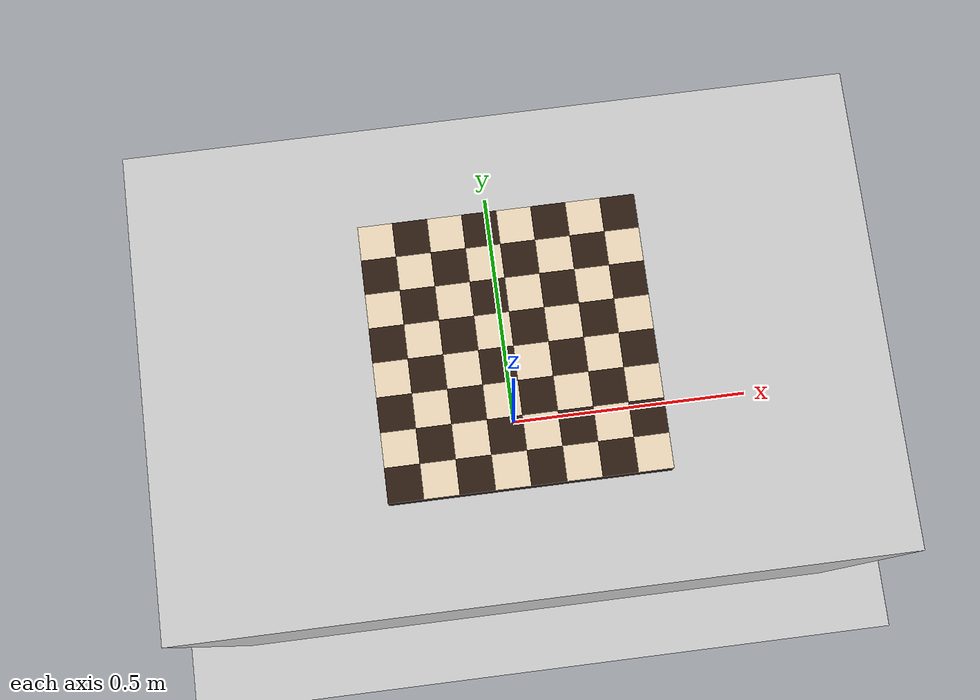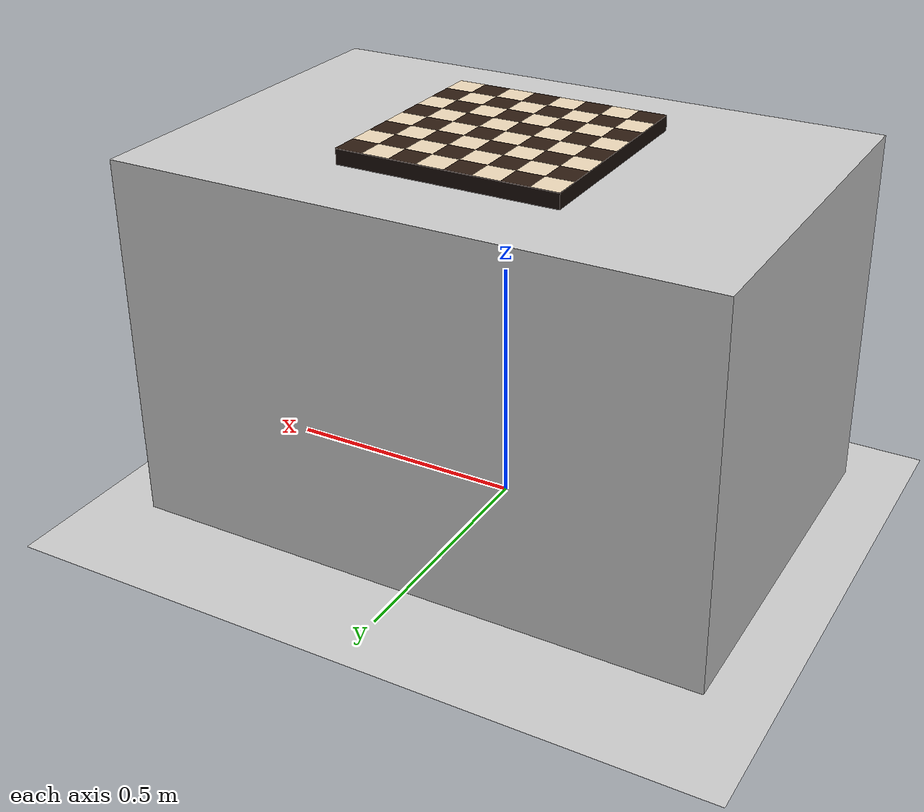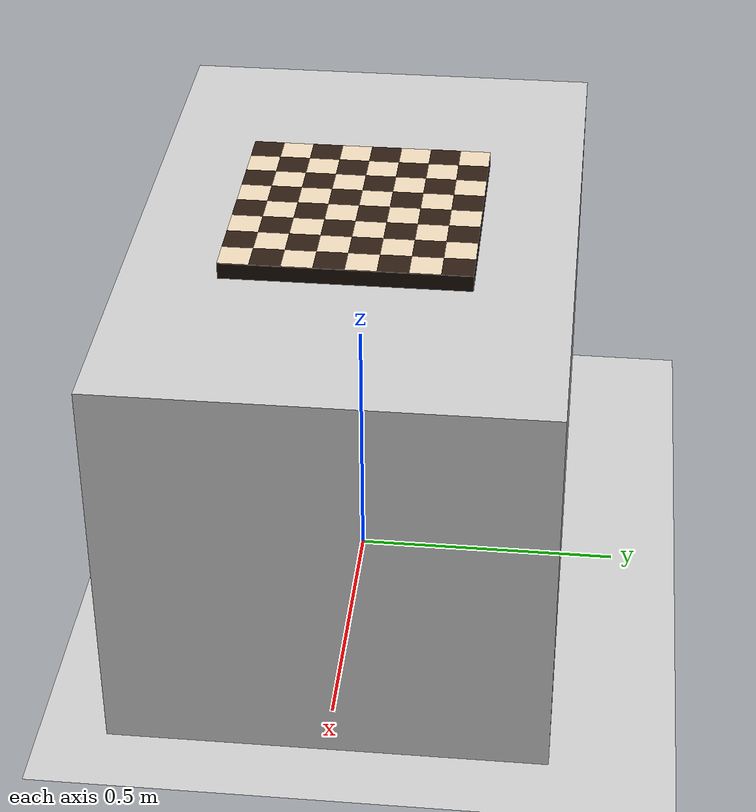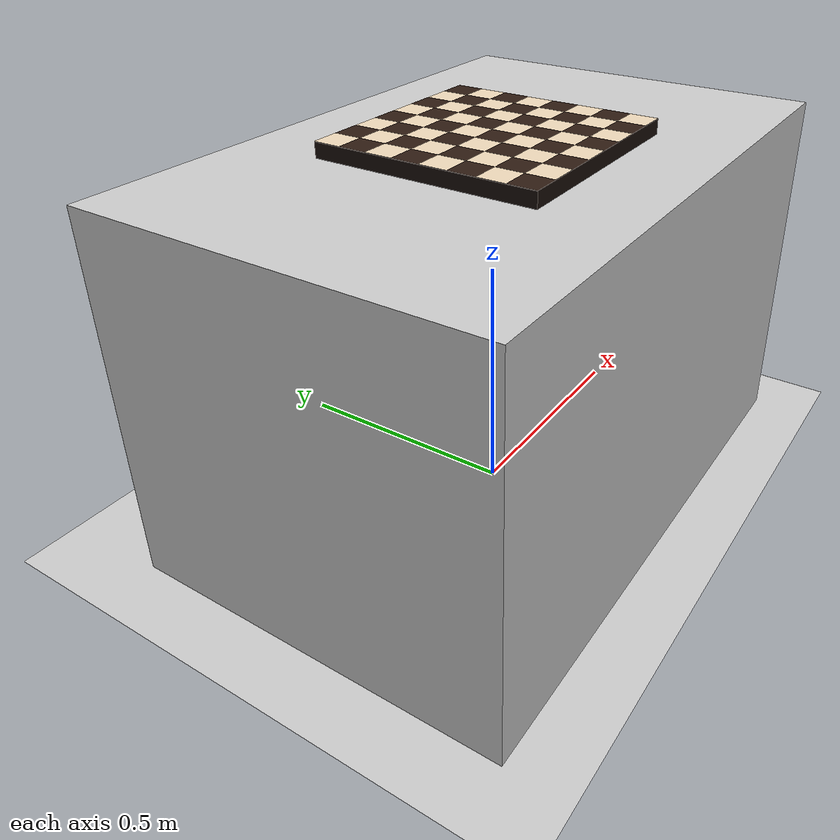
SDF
<?xml version="1.0" ?>
<sdf version="1.9">
  <world name="chess_world">
    <gravity>0 0 -9.81</gravity>

    <plugin filename="ignition-gazebo-physics-system"
            name="ignition::gazebo::systems::Physics"/>
    <plugin filename="ignition-gazebo-scene-broadcaster-system"
            name="ignition::gazebo::systems::SceneBroadcaster"/>
    <plugin filename="ignition-gazebo-user-commands-system"
            name="ignition::gazebo::systems::UserCommands"/>
    <plugin filename="ignition-gazebo-sensors-system"
            name="ignition::gazebo::systems::Sensors">
      <render_engine>ogre2</render_engine>
    </plugin>

    <!-- Conservative physics for stability -->
    <physics name="physics" type="dart">
      <max_step_size>0.001</max_step_size>
      <real_time_factor>1.0</real_time_factor>
      <real_time_update_rate>1000</real_time_update_rate>
    </physics>

    <scene>
      <ambient>0.6 0.6 0.6 1</ambient>
      <background>0.95 0.95 0.95 1</background>
    </scene>

    <light name="sun" type="directional">
      <pose>0 0 10 0 0 0</pose>
      <direction>-0.2 0.1 -1</direction>
      <diffuse>1 1 1 1</diffuse>
      <specular>0.2 0.2 0.2 1</specular>
    </light>

    <!-- Ground -->
    <model name="ground_plane">
      <static>true</static>
      <link name="link">
        <collision name="collision">
          <geometry>
            <plane><normal>0 0 1</normal><size>50 50</size></plane>
          </geometry>
          <surface>
            <friction>
              <ode><mu>1.0</mu><mu2>1.0</mu2></ode>
            </friction>
          </surface>
        </collision>
        <visual name="visual">
          <geometry>
            <plane><normal>0 0 1</normal><size>50 50</size></plane>
          </geometry>
        </visual>
      </link>
    </model>

    <!-- Table: 1.2 x 0.8 x 0.75 -->
    <model name="table">
      <static>true</static>
      <pose>0 0 0.375 0 0 0</pose>
      <link name="link">
        <collision name="collision">
          <geometry><box><size>1.2 0.8 0.75</size></box></geometry>
          <surface>
            <friction>
              <ode><mu>1.2</mu><mu2>1.2</mu2></ode>
            </friction>
          </surface>
        </collision>
        <visual name="visual">
            <material>
                <ambient>0.8 0.8 0.8 1</ambient>
                <diffuse>0.8 0.8 0.8 1</diffuse>
                <specular>0.1 0.1 0.1 1</specular>
            </material>
          <geometry><box><size>1.2 0.8 0.75</size></box></geometry>
        </visual>
      </link>
    </model>

    <!-- Chessboard: 0.45 x 0.45 x 0.03, on top of table -->
    <model name="chessboard">
      <static>true</static>
      <pose>0 0 0.765 0 0 0</pose>
      <link name="link">
        <collision name="collision">
          <geometry><box><size>0.45 0.45 0.03</size></box></geometry>
          <surface>
            <friction>
              <ode><mu>1.5</mu><mu2>1.5</mu2></ode>
            </friction>
          </surface>
        </collision>
        <visual name="frame">
          <geometry><box><size>0.45 0.45 0.03</size></box></geometry>
          <material>
            <ambient>0.10 0.06 0.04 1</ambient>
            <diffuse>0.10 0.06 0.04 1</diffuse>
            <specular>0.05 0.05 0.05 1</specular>
          </material>
        </visual>
        <visual name="sq_a1">
          <pose>-0.196875 -0.196875 0.015500 0 0 0</pose>
          <geometry><box><size>0.05625 0.05625 0.001</size></box></geometry>
          <material>
            <ambient>0.18 0.11 0.07 1</ambient>
            <diffuse>0.18 0.11 0.07 1</diffuse>
            <specular>0.1 0.1 0.1 1</specular>
          </material>
        </visual>
        <visual name="sq_b1">
          <pose>-0.196875 -0.140625 0.015500 0 0 0</pose>
          <geometry><box><size>0.05625 0.05625 0.001</size></box></geometry>
          <material>
            <ambient>0.93 0.85 0.73 1</ambient>
            <diffuse>0.93 0.85 0.73 1</diffuse>
            <specular>0.1 0.1 0.1 1</specular>
          </material>
        </visual>
        <visual name="sq_c1">
          <pose>-0.196875 -0.084375 0.015500 0 0 0</pose>
          <geometry><box><size>0.05625 0.05625 0.001</size></box></geometry>
          <material>
            <ambient>0.18 0.11 0.07 1</ambient>
            <diffuse>0.18 0.11 0.07 1</diffuse>
            <specular>0.1 0.1 0.1 1</specular>
          </material>
        </visual>
        <visual name="sq_d1">
          <pose>-0.196875 -0.028125 0.015500 0 0 0</pose>
          <geometry><box><size>0.05625 0.05625 0.001</size></box></geometry>
          <material>
            <ambient>0.93 0.85 0.73 1</ambient>
            <diffuse>0.93 0.85 0.73 1</diffuse>
            <specular>0.1 0.1 0.1 1</specular>
          </material>
        </visual>
        <visual name="sq_e1">
          <pose>-0.196875 0.028125 0.015500 0 0 0</pose>
          <geometry><box><size>0.05625 0.05625 0.001</size></box></geometry>
          <material>
            <ambient>0.18 0.11 0.07 1</ambient>
            <diffuse>0.18 0.11 0.07 1</diffuse>
            <specular>0.1 0.1 0.1 1</specular>
          </material>
        </visual>
        <visual name="sq_f1">
          <pose>-0.196875 0.084375 0.015500 0 0 0</pose>
          <geometry><box><size>0.05625 0.05625 0.001</size></box></geometry>
          <material>
            <ambient>0.93 0.85 0.73 1</ambient>
            <diffuse>0.93 0.85 0.73 1</diffuse>
            <specular>0.1 0.1 0.1 1</specular>
          </material>
        </visual>
        <visual name="sq_g1">
          <pose>-0.196875 0.140625 0.015500 0 0 0</pose>
          <geometry><box><size>0.05625 0.05625 0.001</size></box></geometry>
          <material>
            <ambient>0.18 0.11 0.07 1</ambient>
            <diffuse>0.18 0.11 0.07 1</diffuse>
            <specular>0.1 0.1 0.1 1</specular>
          </material>
        </visual>
        <visual name="sq_h1">
          <pose>-0.196875 0.196875 0.015500 0 0 0</pose>
          <geometry><box><size>0.05625 0.05625 0.001</size></box></geometry>
          <material>
            <ambient>0.93 0.85 0.73 1</ambient>
            <diffuse>0.93 0.85 0.73 1</diffuse>
            <specular>0.1 0.1 0.1 1</specular>
          </material>
        </visual>
        <visual name="sq_a2">
          <pose>-0.140625 -0.196875 0.015500 0 0 0</pose>
          <geometry><box><size>0.05625 0.05625 0.001</size></box></geometry>
          <material>
            <ambient>0.93 0.85 0.73 1</ambient>
            <diffuse>0.93 0.85 0.73 1</diffuse>
            <specular>0.1 0.1 0.1 1</specular>
          </material>
        </visual>
        <visual name="sq_b2">
          <pose>-0.140625 -0.140625 0.015500 0 0 0</pose>
          <geometry><box><size>0.05625 0.05625 0.001</size></box></geometry>
          <material>
            <ambient>0.18 0.11 0.07 1</ambient>
            <diffuse>0.18 0.11 0.07 1</diffuse>
            <specular>0.1 0.1 0.1 1</specular>
          </material>
        </visual>
        <visual name="sq_c2">
          <pose>-0.140625 -0.084375 0.015500 0 0 0</pose>
          <geometry><box><size>0.05625 0.05625 0.001</size></box></geometry>
          <material>
            <ambient>0.93 0.85 0.73 1</ambient>
            <diffuse>0.93 0.85 0.73 1</diffuse>
            <specular>0.1 0.1 0.1 1</specular>
          </material>
        </visual>
        <visual name="sq_d2">
          <pose>-0.140625 -0.028125 0.015500 0 0 0</pose>
          <geometry><box><size>0.05625 0.05625 0.001</size></box></geometry>
          <material>
            <ambient>0.18 0.11 0.07 1</ambient>
            <diffuse>0.18 0.11 0.07 1</diffuse>
            <specular>0.1 0.1 0.1 1</specular>
          </material>
        </visual>
        <visual name="sq_e2">
          <pose>-0.140625 0.028125 0.015500 0 0 0</pose>
          <geometry><box><size>0.05625 0.05625 0.001</size></box></geometry>
          <material>
            <ambient>0.93 0.85 0.73 1</ambient>
            <diffuse>0.93 0.85 0.73 1</diffuse>
            <specular>0.1 0.1 0.1 1</specular>
          </material>
        </visual>
        <visual name="sq_f2">
          <pose>-0.140625 0.084375 0.015500 0 0 0</pose>
          <geometry><box><size>0.05625 0.05625 0.001</size></box></geometry>
          <material>
            <ambient>0.18 0.11 0.07 1</ambient>
            <diffuse>0.18 0.11 0.07 1</diffuse>
            <specular>0.1 0.1 0.1 1</specular>
          </material>
        </visual>
        <visual name="sq_g2">
          <pose>-0.140625 0.140625 0.015500 0 0 0</pose>
          <geometry><box><size>0.05625 0.05625 0.001</size></box></geometry>
          <material>
            <ambient>0.93 0.85 0.73 1</ambient>
            <diffuse>0.93 0.85 0.73 1</diffuse>
            <specular>0.1 0.1 0.1 1</specular>
          </material>
        </visual>
        <visual name="sq_h2">
          <pose>-0.140625 0.196875 0.015500 0 0 0</pose>
          <geometry><box><size>0.05625 0.05625 0.001</size></box></geometry>
          <material>
            <ambient>0.18 0.11 0.07 1</ambient>
            <diffuse>0.18 0.11 0.07 1</diffuse>
            <specular>0.1 0.1 0.1 1</specular>
          </material>
        </visual>
        <visual name="sq_a3">
          <pose>-0.084375 -0.196875 0.015500 0 0 0</pose>
          <geometry><box><size>0.05625 0.05625 0.001</size></box></geometry>
          <material>
            <ambient>0.18 0.11 0.07 1</ambient>
            <diffuse>0.18 0.11 0.07 1</diffuse>
            <specular>0.1 0.1 0.1 1</specular>
          </material>
        </visual>
        <visual name="sq_b3">
          <pose>-0.084375 -0.140625 0.015500 0 0 0</pose>
          <geometry><box><size>0.05625 0.05625 0.001</size></box></geometry>
          <material>
            <ambient>0.93 0.85 0.73 1</ambient>
            <diffuse>0.93 0.85 0.73 1</diffuse>
            <specular>0.1 0.1 0.1 1</specular>
          </material>
        </visual>
        <visual name="sq_c3">
          <pose>-0.084375 -0.084375 0.015500 0 0 0</pose>
          <geometry><box><size>0.05625 0.05625 0.001</size></box></geometry>
          <material>
            <ambient>0.18 0.11 0.07 1</ambient>
            <diffuse>0.18 0.11 0.07 1</diffuse>
            <specular>0.1 0.1 0.1 1</specular>
          </material>
        </visual>
        <visual name="sq_d3">
          <pose>-0.084375 -0.028125 0.015500 0 0 0</pose>
          <geometry><box><size>0.05625 0.05625 0.001</size></box></geometry>
          <material>
            <ambient>0.93 0.85 0.73 1</ambient>
            <diffuse>0.93 0.85 0.73 1</diffuse>
            <specular>0.1 0.1 0.1 1</specular>
          </material>
        </visual>
        <visual name="sq_e3">
          <pose>-0.084375 0.028125 0.015500 0 0 0</pose>
          <geometry><box><size>0.05625 0.05625 0.001</size></box></geometry>
          <material>
            <ambient>0.18 0.11 0.07 1</ambient>
            <diffuse>0.18 0.11 0.07 1</diffuse>
            <specular>0.1 0.1 0.1 1</specular>
          </material>
        </visual>
        <visual name="sq_f3">
          <pose>-0.084375 0.084375 0.015500 0 0 0</pose>
          <geometry><box><size>0.05625 0.05625 0.001</size></box></geometry>
          <material>
            <ambient>0.93 0.85 0.73 1</ambient>
            <diffuse>0.93 0.85 0.73 1</diffuse>
            <specular>0.1 0.1 0.1 1</specular>
          </material>
        </visual>
        <visual name="sq_g3">
          <pose>-0.084375 0.140625 0.015500 0 0 0</pose>
          <geometry><box><size>0.05625 0.05625 0.001</size></box></geometry>
          <material>
            <ambient>0.18 0.11 0.07 1</ambient>
            <diffuse>0.18 0.11 0.07 1</diffuse>
            <specular>0.1 0.1 0.1 1</specular>
          </material>
        </visual>
        <visual name="sq_h3">
          <pose>-0.084375 0.196875 0.015500 0 0 0</pose>
          <geometry><box><size>0.05625 0.05625 0.001</size></box></geometry>
          <material>
            <ambient>0.93 0.85 0.73 1</ambient>
            <diffuse>0.93 0.85 0.73 1</diffuse>
            <specular>0.1 0.1 0.1 1</specular>
          </material>
        </visual>
        <visual name="sq_a4">
          <pose>-0.028125 -0.196875 0.015500 0 0 0</pose>
          <geometry><box><size>0.05625 0.05625 0.001</size></box></geometry>
          <material>
            <ambient>0.93 0.85 0.73 1</ambient>
            <diffuse>0.93 0.85 0.73 1</diffuse>
            <specular>0.1 0.1 0.1 1</specular>
          </material>
        </visual>
        <visual name="sq_b4">
          <pose>-0.028125 -0.140625 0.015500 0 0 0</pose>
          <geometry><box><size>0.05625 0.05625 0.001</size></box></geometry>
          <material>
            <ambient>0.18 0.11 0.07 1</ambient>
            <diffuse>0.18 0.11 0.07 1</diffuse>
            <specular>0.1 0.1 0.1 1</specular>
          </material>
        </visual>
        <visual name="sq_c4">
          <pose>-0.028125 -0.084375 0.015500 0 0 0</pose>
          <geometry><box><size>0.05625 0.05625 0.001</size></box></geometry>
          <material>
            <ambient>0.93 0.85 0.73 1</ambient>
            <diffuse>0.93 0.85 0.73 1</diffuse>
            <specular>0.1 0.1 0.1 1</specular>
          </material>
        </visual>
        <visual name="sq_d4">
          <pose>-0.028125 -0.028125 0.015500 0 0 0</pose>
          <geometry><box><size>0.05625 0.05625 0.001</size></box></geometry>
          <material>
            <ambient>0.18 0.11 0.07 1</ambient>
            <diffuse>0.18 0.11 0.07 1</diffuse>
            <specular>0.1 0.1 0.1 1</specular>
          </material>
        </visual>
        <visual name="sq_e4">
          <pose>-0.028125 0.028125 0.015500 0 0 0</pose>
          <geometry><box><size>0.05625 0.05625 0.001</size></box></geometry>
          <material>
            <ambient>0.93 0.85 0.73 1</ambient>
            <diffuse>0.93 0.85 0.73 1</diffuse>
            <specular>0.1 0.1 0.1 1</specular>
          </material>
        </visual>
        <visual name="sq_f4">
          <pose>-0.028125 0.084375 0.015500 0 0 0</pose>
          <geometry><box><size>0.05625 0.05625 0.001</size></box></geometry>
          <material>
            <ambient>0.18 0.11 0.07 1</ambient>
            <diffuse>0.18 0.11 0.07 1</diffuse>
            <specular>0.1 0.1 0.1 1</specular>
          </material>
        </visual>
        <visual name="sq_g4">
          <pose>-0.028125 0.140625 0.015500 0 0 0</pose>
          <geometry><box><size>0.05625 0.05625 0.001</size></box></geometry>
          <material>
            <ambient>0.93 0.85 0.73 1</ambient>
            <diffuse>0.93 0.85 0.73 1</diffuse>
            <specular>0.1 0.1 0.1 1</specular>
          </material>
        </visual>
        <visual name="sq_h4">
          <pose>-0.028125 0.196875 0.015500 0 0 0</pose>
          <geometry><box><size>0.05625 0.05625 0.001</size></box></geometry>
          <material>
            <ambient>0.18 0.11 0.07 1</ambient>
            <diffuse>0.18 0.11 0.07 1</diffuse>
            <specular>0.1 0.1 0.1 1</specular>
          </material>
        </visual>
        <visual name="sq_a5">
          <pose>0.028125 -0.196875 0.015500 0 0 0</pose>
          <geometry><box><size>0.05625 0.05625 0.001</size></box></geometry>
          <material>
            <ambient>0.18 0.11 0.07 1</ambient>
            <diffuse>0.18 0.11 0.07 1</diffuse>
            <specular>0.1 0.1 0.1 1</specular>
          </material>
        </visual>
        <visual name="sq_b5">
          <pose>0.028125 -0.140625 0.015500 0 0 0</pose>
          <geometry><box><size>0.05625 0.05625 0.001</size></box></geometry>
          <material>
            <ambient>0.93 0.85 0.73 1</ambient>
            <diffuse>0.93 0.85 0.73 1</diffuse>
            <specular>0.1 0.1 0.1 1</specular>
          </material>
        </visual>
        <visual name="sq_c5">
          <pose>0.028125 -0.084375 0.015500 0 0 0</pose>
          <geometry><box><size>0.05625 0.05625 0.001</size></box></geometry>
          <material>
            <ambient>0.18 0.11 0.07 1</ambient>
            <diffuse>0.18 0.11 0.07 1</diffuse>
            <specular>0.1 0.1 0.1 1</specular>
          </material>
        </visual>
        <visual name="sq_d5">
          <pose>0.028125 -0.028125 0.015500 0 0 0</pose>
          <geometry><box><size>0.05625 0.05625 0.001</size></box></geometry>
          <material>
            <ambient>0.93 0.85 0.73 1</ambient>
            <diffuse>0.93 0.85 0.73 1</diffuse>
            <specular>0.1 0.1 0.1 1</specular>
          </material>
        </visual>
        <visual name="sq_e5">
          <pose>0.028125 0.028125 0.015500 0 0 0</pose>
          <geometry><box><size>0.05625 0.05625 0.001</size></box></geometry>
          <material>
            <ambient>0.18 0.11 0.07 1</ambient>
            <diffuse>0.18 0.11 0.07 1</diffuse>
            <specular>0.1 0.1 0.1 1</specular>
          </material>
        </visual>
        <visual name="sq_f5">
          <pose>0.028125 0.084375 0.015500 0 0 0</pose>
          <geometry><box><size>0.05625 0.05625 0.001</size></box></geometry>
          <material>
            <ambient>0.93 0.85 0.73 1</ambient>
            <diffuse>0.93 0.85 0.73 1</diffuse>
            <specular>0.1 0.1 0.1 1</specular>
          </material>
        </visual>
        <visual name="sq_g5">
          <pose>0.028125 0.140625 0.015500 0 0 0</pose>
          <geometry><box><size>0.05625 0.05625 0.001</size></box></geometry>
          <material>
            <ambient>0.18 0.11 0.07 1</ambient>
            <diffuse>0.18 0.11 0.07 1</diffuse>
            <specular>0.1 0.1 0.1 1</specular>
          </material>
        </visual>
        <visual name="sq_h5">
          <pose>0.028125 0.196875 0.015500 0 0 0</pose>
          <geometry><box><size>0.05625 0.05625 0.001</size></box></geometry>
          <material>
            <ambient>0.93 0.85 0.73 1</ambient>
            <diffuse>0.93 0.85 0.73 1</diffuse>
            <specular>0.1 0.1 0.1 1</specular>
          </material>
        </visual>
        <visual name="sq_a6">
          <pose>0.084375 -0.196875 0.015500 0 0 0</pose>
          <geometry><box><size>0.05625 0.05625 0.001</size></box></geometry>
          <material>
            <ambient>0.93 0.85 0.73 1</ambient>
            <diffuse>0.93 0.85 0.73 1</diffuse>
            <specular>0.1 0.1 0.1 1</specular>
          </material>
        </visual>
        <visual name="sq_b6">
          <pose>0.084375 -0.140625 0.015500 0 0 0</pose>
          <geometry><box><size>0.05625 0.05625 0.001</size></box></geometry>
          <material>
            <ambient>0.18 0.11 0.07 1</ambient>
            <diffuse>0.18 0.11 0.07 1</diffuse>
            <specular>0.1 0.1 0.1 1</specular>
          </material>
        </visual>
        <visual name="sq_c6">
          <pose>0.084375 -0.084375 0.015500 0 0 0</pose>
          <geometry><box><size>0.05625 0.05625 0.001</size></box></geometry>
          <material>
            <ambient>0.93 0.85 0.73 1</ambient>
            <diffuse>0.93 0.85 0.73 1</diffuse>
            <specular>0.1 0.1 0.1 1</specular>
          </material>
        </visual>
        <visual name="sq_d6">
          <pose>0.084375 -0.028125 0.015500 0 0 0</pose>
          <geometry><box><size>0.05625 0.05625 0.001</size></box></geometry>
          <material>
            <ambient>0.18 0.11 0.07 1</ambient>
            <diffuse>0.18 0.11 0.07 1</diffuse>
            <specular>0.1 0.1 0.1 1</specular>
          </material>
        </visual>
        <visual name="sq_e6">
          <pose>0.084375 0.028125 0.015500 0 0 0</pose>
          <geometry><box><size>0.05625 0.05625 0.001</size></box></geometry>
          <material>
            <ambient>0.93 0.85 0.73 1</ambient>
            <diffuse>0.93 0.85 0.73 1</diffuse>
            <specular>0.1 0.1 0.1 1</specular>
          </material>
        </visual>
        <visual name="sq_f6">
          <pose>0.084375 0.084375 0.015500 0 0 0</pose>
          <geometry><box><size>0.05625 0.05625 0.001</size></box></geometry>
          <material>
            <ambient>0.18 0.11 0.07 1</ambient>
            <diffuse>0.18 0.11 0.07 1</diffuse>
            <specular>0.1 0.1 0.1 1</specular>
          </material>
        </visual>
        <visual name="sq_g6">
          <pose>0.084375 0.140625 0.015500 0 0 0</pose>
          <geometry><box><size>0.05625 0.05625 0.001</size></box></geometry>
          <material>
            <ambient>0.93 0.85 0.73 1</ambient>
            <diffuse>0.93 0.85 0.73 1</diffuse>
            <specular>0.1 0.1 0.1 1</specular>
          </material>
        </visual>
        <visual name="sq_h6">
          <pose>0.084375 0.196875 0.015500 0 0 0</pose>
          <geometry><box><size>0.05625 0.05625 0.001</size></box></geometry>
          <material>
            <ambient>0.18 0.11 0.07 1</ambient>
            <diffuse>0.18 0.11 0.07 1</diffuse>
            <specular>0.1 0.1 0.1 1</specular>
          </material>
        </visual>
        <visual name="sq_a7">
          <pose>0.140625 -0.196875 0.015500 0 0 0</pose>
          <geometry><box><size>0.05625 0.05625 0.001</size></box></geometry>
          <material>
            <ambient>0.18 0.11 0.07 1</ambient>
            <diffuse>0.18 0.11 0.07 1</diffuse>
            <specular>0.1 0.1 0.1 1</specular>
          </material>
        </visual>
        <visual name="sq_b7">
          <pose>0.140625 -0.140625 0.015500 0 0 0</pose>
          <geometry><box><size>0.05625 0.05625 0.001</size></box></geometry>
          <material>
            <ambient>0.93 0.85 0.73 1</ambient>
            <diffuse>0.93 0.85 0.73 1</diffuse>
            <specular>0.1 0.1 0.1 1</specular>
          </material>
        </visual>
        <visual name="sq_c7">
          <pose>0.140625 -0.084375 0.015500 0 0 0</pose>
          <geometry><box><size>0.05625 0.05625 0.001</size></box></geometry>
          <material>
            <ambient>0.18 0.11 0.07 1</ambient>
            <diffuse>0.18 0.11 0.07 1</diffuse>
            <specular>0.1 0.1 0.1 1</specular>
          </material>
        </visual>
        <visual name="sq_d7">
          <pose>0.140625 -0.028125 0.015500 0 0 0</pose>
          <geometry><box><size>0.05625 0.05625 0.001</size></box></geometry>
          <material>
            <ambient>0.93 0.85 0.73 1</ambient>
            <diffuse>0.93 0.85 0.73 1</diffuse>
            <specular>0.1 0.1 0.1 1</specular>
          </material>
        </visual>
        <visual name="sq_e7">
          <pose>0.140625 0.028125 0.015500 0 0 0</pose>
          <geometry><box><size>0.05625 0.05625 0.001</size></box></geometry>
          <material>
            <ambient>0.18 0.11 0.07 1</ambient>
            <diffuse>0.18 0.11 0.07 1</diffuse>
            <specular>0.1 0.1 0.1 1</specular>
          </material>
        </visual>
        <visual name="sq_f7">
          <pose>0.140625 0.084375 0.015500 0 0 0</pose>
          <geometry><box><size>0.05625 0.05625 0.001</size></box></geometry>
          <material>
            <ambient>0.93 0.85 0.73 1</ambient>
            <diffuse>0.93 0.85 0.73 1</diffuse>
            <specular>0.1 0.1 0.1 1</specular>
          </material>
        </visual>
        <visual name="sq_g7">
          <pose>0.140625 0.140625 0.015500 0 0 0</pose>
          <geometry><box><size>0.05625 0.05625 0.001</size></box></geometry>
          <material>
            <ambient>0.18 0.11 0.07 1</ambient>
            <diffuse>0.18 0.11 0.07 1</diffuse>
            <specular>0.1 0.1 0.1 1</specular>
          </material>
        </visual>
        <visual name="sq_h7">
          <pose>0.140625 0.196875 0.015500 0 0 0</pose>
          <geometry><box><size>0.05625 0.05625 0.001</size></box></geometry>
          <material>
            <ambient>0.93 0.85 0.73 1</ambient>
            <diffuse>0.93 0.85 0.73 1</diffuse>
            <specular>0.1 0.1 0.1 1</specular>
          </material>
        </visual>
        <visual name="sq_a8">
          <pose>0.196875 -0.196875 0.015500 0 0 0</pose>
          <geometry><box><size>0.05625 0.05625 0.001</size></box></geometry>
          <material>
            <ambient>0.93 0.85 0.73 1</ambient>
            <diffuse>0.93 0.85 0.73 1</diffuse>
            <specular>0.1 0.1 0.1 1</specular>
          </material>
        </visual>
        <visual name="sq_b8">
          <pose>0.196875 -0.140625 0.015500 0 0 0</pose>
          <geometry><box><size>0.05625 0.05625 0.001</size></box></geometry>
          <material>
            <ambient>0.18 0.11 0.07 1</ambient>
            <diffuse>0.18 0.11 0.07 1</diffuse>
            <specular>0.1 0.1 0.1 1</specular>
          </material>
        </visual>
        <visual name="sq_c8">
          <pose>0.196875 -0.084375 0.015500 0 0 0</pose>
          <geometry><box><size>0.05625 0.05625 0.001</size></box></geometry>
          <material>
            <ambient>0.93 0.85 0.73 1</ambient>
            <diffuse>0.93 0.85 0.73 1</diffuse>
            <specular>0.1 0.1 0.1 1</specular>
          </material>
        </visual>
        <visual name="sq_d8">
          <pose>0.196875 -0.028125 0.015500 0 0 0</pose>
          <geometry><box><size>0.05625 0.05625 0.001</size></box></geometry>
          <material>
            <ambient>0.18 0.11 0.07 1</ambient>
            <diffuse>0.18 0.11 0.07 1</diffuse>
            <specular>0.1 0.1 0.1 1</specular>
          </material>
        </visual>
        <visual name="sq_e8">
          <pose>0.196875 0.028125 0.015500 0 0 0</pose>
          <geometry><box><size>0.05625 0.05625 0.001</size></box></geometry>
          <material>
            <ambient>0.93 0.85 0.73 1</ambient>
            <diffuse>0.93 0.85 0.73 1</diffuse>
            <specular>0.1 0.1 0.1 1</specular>
          </material>
        </visual>
        <visual name="sq_f8">
          <pose>0.196875 0.084375 0.015500 0 0 0</pose>
          <geometry><box><size>0.05625 0.05625 0.001</size></box></geometry>
          <material>
            <ambient>0.18 0.11 0.07 1</ambient>
            <diffuse>0.18 0.11 0.07 1</diffuse>
            <specular>0.1 0.1 0.1 1</specular>
          </material>
        </visual>
        <visual name="sq_g8">
          <pose>0.196875 0.140625 0.015500 0 0 0</pose>
          <geometry><box><size>0.05625 0.05625 0.001</size></box></geometry>
          <material>
            <ambient>0.93 0.85 0.73 1</ambient>
            <diffuse>0.93 0.85 0.73 1</diffuse>
            <specular>0.1 0.1 0.1 1</specular>
          </material>
        </visual>
        <visual name="sq_h8">
          <pose>0.196875 0.196875 0.015500 0 0 0</pose>
          <geometry><box><size>0.05625 0.05625 0.001</size></box></geometry>
          <material>
            <ambient>0.18 0.11 0.07 1</ambient>
            <diffuse>0.18 0.11 0.07 1</diffuse>
            <specular>0.1 0.1 0.1 1</specular>
          </material>
        </visual>
      </link>
    </model>

<model name="overhead_rgbd_camera">
  <static>true</static>
  <pose>0 0 1.2 0 1.5708 0</pose> <!-- x y z roll pitch yaw; pitch=90deg downward -->
  <link name="link">
    <sensor name="rgb_camera" type="camera">
      <always_on>true</always_on>
      <update_rate>30</update_rate>
      <camera>
        <horizontal_fov>1.5</horizontal_fov>
        <image>
          <width>1280</width>
          <height>720</height>
          <format>R8G8B8</format>
        </image>
        <clip>
          <near>0.05</near>
          <far>5.0</far>
        </clip>
      </camera>
      <topic>/overhead_camera/image</topic>
    </sensor>

    <sensor name="depth_camera" type="depth_camera">
      <always_on>true</always_on>
      <update_rate>30</update_rate>
      <camera>
        <horizontal_fov>1.5</horizontal_fov>
        <image>
          <width>640</width>
          <height>480</height>
          <format>R_FLOAT32</format>
        </image>
        <clip>
          <near>0.05</near>
          <far>5.0</far>
        </clip>
      </camera>
      <topic>/overhead_camera/depth</topic>
    </sensor>
  </link>
</model>

  </world>
</sdf>
